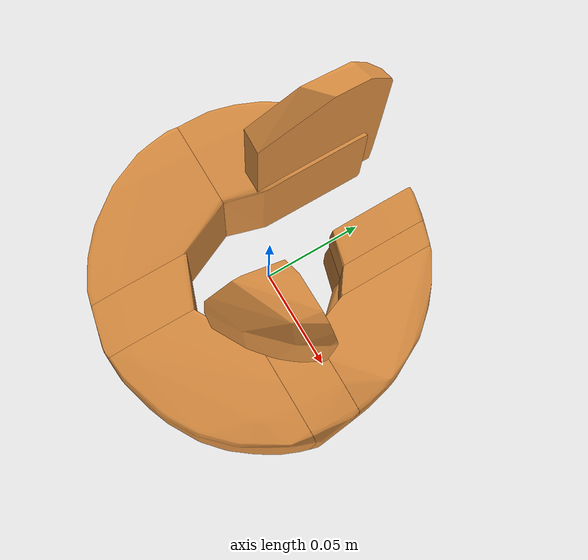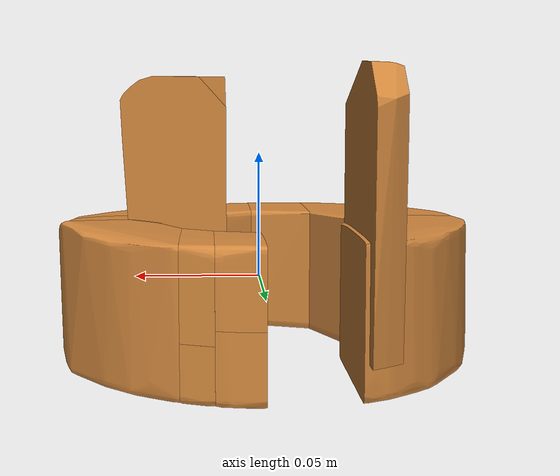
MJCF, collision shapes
<mujoco model="big_tape">
  <compiler angle="radian"/>

  <asset>
    <material name="object" rgba="0.85 0.55 0.25 1"/>
    <mesh name="object_visual_mesh" file="source/top_watertight_tiny.obj"/>
    <mesh name="object_collision_mesh_000" file="collision/hull_000.obj"/>
    <mesh name="object_collision_mesh_001" file="collision/hull_001.obj"/>
    <mesh name="object_collision_mesh_002" file="collision/hull_002.obj"/>
    <mesh name="object_collision_mesh_003" file="collision/hull_003.obj"/>
    <mesh name="object_collision_mesh_004" file="collision/hull_004.obj"/>
    <mesh name="object_collision_mesh_005" file="collision/hull_005.obj"/>
    <mesh name="object_collision_mesh_006" file="collision/hull_006.obj"/>
    <mesh name="object_collision_mesh_007" file="collision/hull_007.obj"/>
    <mesh name="object_collision_mesh_008" file="collision/hull_008.obj"/>
    <mesh name="object_collision_mesh_009" file="collision/hull_009.obj"/>
    <mesh name="object_collision_mesh_010" file="collision/hull_010.obj"/>
    <mesh name="object_collision_mesh_011" file="collision/hull_011.obj"/>
  </asset>

  <worldbody>
    <body name="object">
      <inertial pos="-0.00228615 -0.00310901 -0.00387105" quat="0.267645 0.656742 -0.269854 0.651333" mass="0.24875" diaginertia="0.000992571 0.000573156 0.000529177"/>
      <joint name="object_joint" type="free" damping="1e-05 1e-05 1e-05"/>
      <geom name="object_visual" type="mesh" contype="0" conaffinity="0" mass="0" material="object" rgba="1 0.423529 0.0392157 1" mesh="object_visual_mesh"/>
      <geom name="object_collision" type="mesh" condim="6" friction="0.2" mass="0" material="object" mesh="object_collision_mesh_000"/>
      <geom name="object_collision_001" type="mesh" condim="6" friction="0.2" mass="0" material="object" mesh="object_collision_mesh_001"/>
      <geom name="object_collision_002" type="mesh" condim="6" friction="0.2" mass="0" material="object" mesh="object_collision_mesh_002"/>
      <geom name="object_collision_003" type="mesh" condim="6" friction="0.2" mass="0" material="object" mesh="object_collision_mesh_003"/>
      <geom name="object_collision_004" type="mesh" condim="6" friction="0.2" mass="0" material="object" mesh="object_collision_mesh_004"/>
      <geom name="object_collision_005" type="mesh" condim="6" friction="0.2" mass="0" material="object" mesh="object_collision_mesh_005"/>
      <geom name="object_collision_006" type="mesh" condim="6" friction="0.2" mass="0" material="object" mesh="object_collision_mesh_006"/>
      <geom name="object_collision_007" type="mesh" condim="6" friction="0.2" mass="0" material="object" mesh="object_collision_mesh_007"/>
      <geom name="object_collision_008" type="mesh" condim="6" friction="0.2" mass="0" material="object" mesh="object_collision_mesh_008"/>
      <geom name="object_collision_009" type="mesh" condim="6" friction="0.2" mass="0" material="object" mesh="object_collision_mesh_009"/>
      <geom name="object_collision_010" type="mesh" condim="6" friction="0.2" mass="0" material="object" mesh="object_collision_mesh_010"/>
      <geom name="object_collision_011" type="mesh" condim="6" friction="0.2" mass="0" material="object" mesh="object_collision_mesh_011"/>
    </body>
  </worldbody>
</mujoco>
